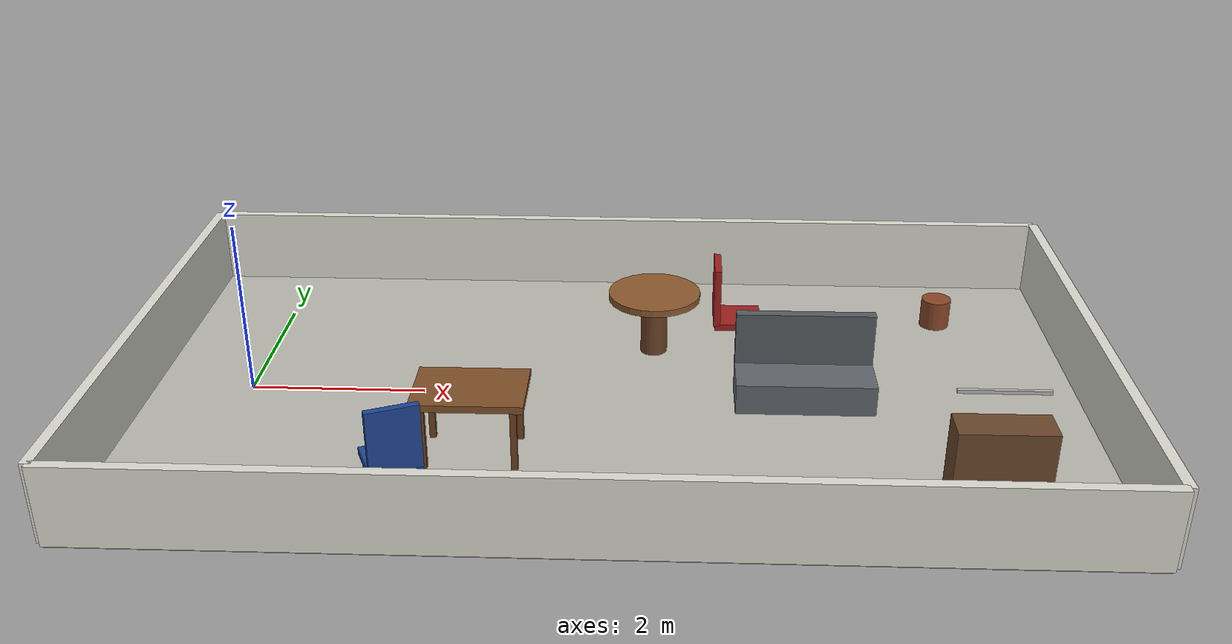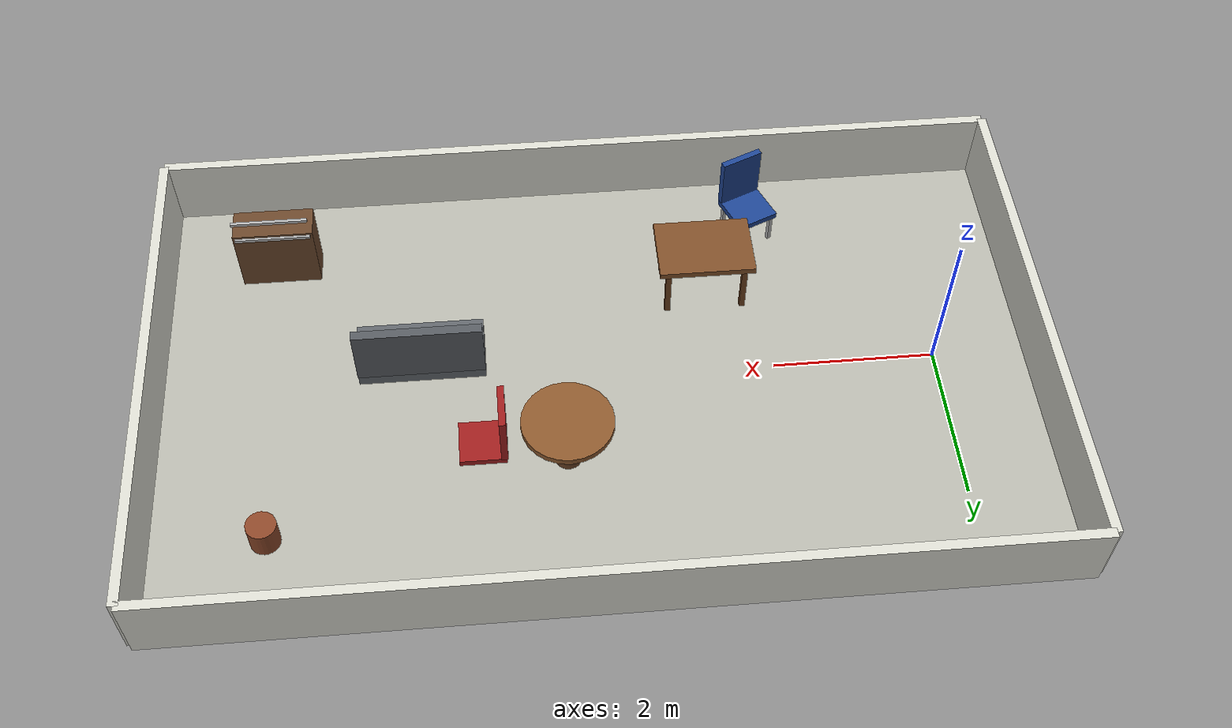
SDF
<sdf version="1.6">
 <world name="nav_challenge_room">
  <physics name="default_physics" type="ode">
   <max_step_size>0.001</max_step_size>
   <real_time_factor>1.0</real_time_factor>
   <real_time_update_rate>1000</real_time_update_rate>
  </physics>
  <scene>
   <ambient>0.68 0.68 0.66 1</ambient>
   <background>0.78 0.82 0.86 1</background>
   <shadows>true</shadows>
  </scene>
  <include><uri>model://sun</uri></include>
  <model name="nav_test_room">
   <static>true</static>
   <link name="floor">
    <pose>4.2 0 -0.025 0 0 0</pose>
    <collision name="collision"><geometry><box><size>10.8 6.4 0.05</size></box></geometry></collision>
    <visual name="visual">
     <geometry><box><size>10.8 6.4 0.05</size></box></geometry>
     <material><ambient>0.72 0.72 0.68 1</ambient><diffuse>0.72 0.72 0.68 1</diffuse></material>
    </visual>
   </link>
   <link name="north_wall">
    <pose>4.2 3.2 0.45 0 0 0</pose>
    <collision name="collision"><geometry><box><size>10.8 0.12 0.9</size></box></geometry></collision>
    <visual name="visual">
     <geometry><box><size>10.8 0.12 0.9</size></box></geometry>
     <material><ambient>0.86 0.86 0.82 1</ambient><diffuse>0.86 0.86 0.82 1</diffuse></material>
    </visual>
   </link>
   <link name="south_wall">
    <pose>4.2 -3.2 0.45 0 0 0</pose>
    <collision name="collision"><geometry><box><size>10.8 0.12 0.9</size></box></geometry></collision>
    <visual name="visual">
     <geometry><box><size>10.8 0.12 0.9</size></box></geometry>
     <material><ambient>0.86 0.86 0.82 1</ambient><diffuse>0.86 0.86 0.82 1</diffuse></material>
    </visual>
   </link>
   <link name="east_wall">
    <pose>9.6 0 0.45 0 0 0</pose>
    <collision name="collision"><geometry><box><size>0.12 6.4 0.9</size></box></geometry></collision>
    <visual name="visual">
     <geometry><box><size>0.12 6.4 0.9</size></box></geometry>
     <material><ambient>0.86 0.86 0.82 1</ambient><diffuse>0.86 0.86 0.82 1</diffuse></material>
    </visual>
   </link>
   <link name="west_wall">
    <pose>-1.2 0 0.45 0 0 0</pose>
    <collision name="collision"><geometry><box><size>0.12 6.4 0.9</size></box></geometry></collision>
    <visual name="visual">
     <geometry><box><size>0.12 6.4 0.9</size></box></geometry>
     <material><ambient>0.86 0.86 0.82 1</ambient><diffuse>0.86 0.86 0.82 1</diffuse></material>
    </visual>
   </link>
  </model>
  <model name="wooden_table_south">
   <static>true</static>
   <pose>2.75 -1.35 0 0 0 0</pose>
   <link name="top">
    <pose>0 0 0.76 0 0 0</pose>
    <collision name="collision"><geometry><box><size>1.2 0.85 0.08</size></box></geometry></collision>
    <visual name="visual">
     <geometry><box><size>1.2 0.85 0.08</size></box></geometry>
     <material><ambient>0.42 0.26 0.13 1</ambient><diffuse>0.50 0.31 0.16 1</diffuse></material>
    </visual>
   </link>
   <link name="legs">
    <pose>0 0 0.37 0 0 0</pose>
    <collision name="collision"><geometry><box><size>1.05 0.72 0.74</size></box></geometry></collision>
    <visual name="front_left">
     <pose>0.48 0.32 0 0 0 0</pose>
     <geometry><box><size>0.07 0.07 0.74</size></box></geometry>
     <material><ambient>0.35 0.20 0.10 1</ambient><diffuse>0.42 0.25 0.12 1</diffuse></material>
    </visual>
    <visual name="front_right">
     <pose>0.48 -0.32 0 0 0 0</pose>
     <geometry><box><size>0.07 0.07 0.74</size></box></geometry>
     <material><ambient>0.35 0.20 0.10 1</ambient><diffuse>0.42 0.25 0.12 1</diffuse></material>
    </visual>
    <visual name="back_left">
     <pose>-0.48 0.32 0 0 0 0</pose>
     <geometry><box><size>0.07 0.07 0.74</size></box></geometry>
     <material><ambient>0.35 0.20 0.10 1</ambient><diffuse>0.42 0.25 0.12 1</diffuse></material>
    </visual>
    <visual name="back_right">
     <pose>-0.48 -0.32 0 0 0 0</pose>
     <geometry><box><size>0.07 0.07 0.74</size></box></geometry>
     <material><ambient>0.35 0.20 0.10 1</ambient><diffuse>0.42 0.25 0.12 1</diffuse></material>
    </visual>
   </link>
  </model>
  <model name="blue_chair_south">
   <static>true</static>
   <pose>2.05 -2.25 0 0 0 0.4</pose>
   <link name="seat">
    <pose>0 0 0.45 0 0 0</pose>
    <collision name="collision"><geometry><box><size>0.55 0.55 0.08</size></box></geometry></collision>
    <visual name="visual">
     <geometry><box><size>0.55 0.55 0.08</size></box></geometry>
     <material><ambient>0.08 0.18 0.38 1</ambient><diffuse>0.12 0.27 0.58 1</diffuse></material>
    </visual>
   </link>
   <link name="back">
    <pose>0 -0.25 0.82 0 0 0</pose>
    <collision name="collision"><geometry><box><size>0.55 0.08 0.7</size></box></geometry></collision>
    <visual name="visual">
     <geometry><box><size>0.55 0.08 0.7</size></box></geometry>
     <material><ambient>0.08 0.18 0.38 1</ambient><diffuse>0.12 0.27 0.58 1</diffuse></material>
    </visual>
   </link>
   <link name="legs">
    <pose>0 0 0.22 0 0 0</pose>
    <visual name="front_left">
     <pose>0.22 0.22 0 0 0 0</pose>
     <geometry><box><size>0.05 0.05 0.44</size></box></geometry>
    </visual>
    <visual name="front_right">
     <pose>-0.22 0.22 0 0 0 0</pose>
     <geometry><box><size>0.05 0.05 0.44</size></box></geometry>
    </visual>
    <visual name="back_left">
     <pose>0.22 -0.22 0 0 0 0</pose>
     <geometry><box><size>0.05 0.05 0.44</size></box></geometry>
    </visual>
    <visual name="back_right">
     <pose>-0.22 -0.22 0 0 0 0</pose>
     <geometry><box><size>0.05 0.05 0.44</size></box></geometry>
    </visual>
   </link>
  </model>
  <model name="round_table_north">
   <static>true</static>
   <pose>4.65 1.15 0 0 0 0</pose>
   <link name="top">
    <pose>0 0 0.74 0 0 0</pose>
    <collision name="collision">
     <geometry><cylinder><radius>0.55</radius><length>0.08</length></cylinder></geometry>
    </collision>
    <visual name="visual">
     <geometry><cylinder><radius>0.55</radius><length>0.08</length></cylinder></geometry>
     <material><ambient>0.45 0.29 0.15 1</ambient><diffuse>0.55 0.35 0.18 1</diffuse></material>
    </visual>
   </link>
   <link name="base">
    <pose>0 0 0.36 0 0 0</pose>
    <collision name="collision">
     <geometry><cylinder><radius>0.16</radius><length>0.72</length></cylinder></geometry>
    </collision>
    <visual name="visual">
     <geometry><cylinder><radius>0.16</radius><length>0.72</length></cylinder></geometry>
     <material><ambient>0.35 0.22 0.12 1</ambient><diffuse>0.42 0.26 0.14 1</diffuse></material>
    </visual>
   </link>
  </model>
  <model name="red_chair_north">
   <static>true</static>
   <pose>5.65 1.15 0 0 0 -1.5708</pose>
   <link name="seat">
    <pose>0 0 0.45 0 0 0</pose>
    <collision name="collision"><geometry><box><size>0.55 0.55 0.08</size></box></geometry></collision>
    <visual name="visual">
     <geometry><box><size>0.55 0.55 0.08</size></box></geometry>
     <material><ambient>0.40 0.08 0.08 1</ambient><diffuse>0.62 0.12 0.12 1</diffuse></material>
    </visual>
   </link>
   <link name="back">
    <pose>0 -0.25 0.82 0 0 0</pose>
    <collision name="collision"><geometry><box><size>0.55 0.08 0.7</size></box></geometry></collision>
    <visual name="visual">
     <geometry><box><size>0.55 0.08 0.7</size></box></geometry>
     <material><ambient>0.40 0.08 0.08 1</ambient><diffuse>0.62 0.12 0.12 1</diffuse></material>
    </visual>
   </link>
  </model>
  <model name="gray_sofa">
   <static>true</static>
   <pose>6.35 -0.35 0 0 0 0</pose>
   <link name="base">
    <pose>0 0 0.32 0 0 0</pose>
    <collision name="collision"><geometry><box><size>1.55 0.62 0.35</size></box></geometry></collision>
    <visual name="visual">
     <geometry><box><size>1.55 0.62 0.35</size></box></geometry>
     <material><ambient>0.28 0.30 0.32 1</ambient><diffuse>0.38 0.40 0.42 1</diffuse></material>
    </visual>
   </link>
   <link name="back">
    <pose>0 0.30 0.72 0 0 0</pose>
    <collision name="collision"><geometry><box><size>1.55 0.12 0.75</size></box></geometry></collision>
    <visual name="visual">
     <geometry><box><size>1.55 0.12 0.75</size></box></geometry>
     <material><ambient>0.24 0.26 0.28 1</ambient><diffuse>0.34 0.36 0.38 1</diffuse></material>
    </visual>
   </link>
  </model>
  <model name="wooden_cabinet">
   <static>true</static>
   <pose>8.15 -2.1 0.45 0 0 0</pose>
   <link name="body">
    <collision name="collision"><geometry><box><size>1.0 0.42 0.9</size></box></geometry></collision>
    <visual name="visual">
     <geometry><box><size>1.0 0.42 0.9</size></box></geometry>
     <material><ambient>0.32 0.22 0.14 1</ambient><diffuse>0.42 0.28 0.17 1</diffuse></material>
    </visual>
   </link>
   <link name="shelves">
    <pose>0 0.22 0.52 0 0 0</pose>
    <visual name="shelf_1">
     <pose>0 0 0.18 0 0 0</pose>
     <geometry><box><size>0.94 0.04 0.04</size></box></geometry>
    </visual>
    <visual name="shelf_2">
     <pose>0 0 -0.12 0 0 0</pose>
     <geometry><box><size>0.94 0.04 0.04</size></box></geometry>
    </visual>
   </link>
  </model>
  <model name="plant_pot_nav">
   <static>true</static>
   <pose>8.2 2.0 0 0 0 0</pose>
   <link name="pot">
    <pose>0 0 0.18 0 0 0</pose>
    <collision name="collision">
     <geometry><cylinder><radius>0.18</radius><length>0.36</length></cylinder></geometry>
    </collision>
    <visual name="visual">
     <geometry><cylinder><radius>0.18</radius><length>0.36</length></cylinder></geometry>
     <material><ambient>0.45 0.22 0.12 1</ambient><diffuse>0.55 0.28 0.16 1</diffuse></material>
    </visual>
   </link>
  </model>
 </world>
</sdf>
